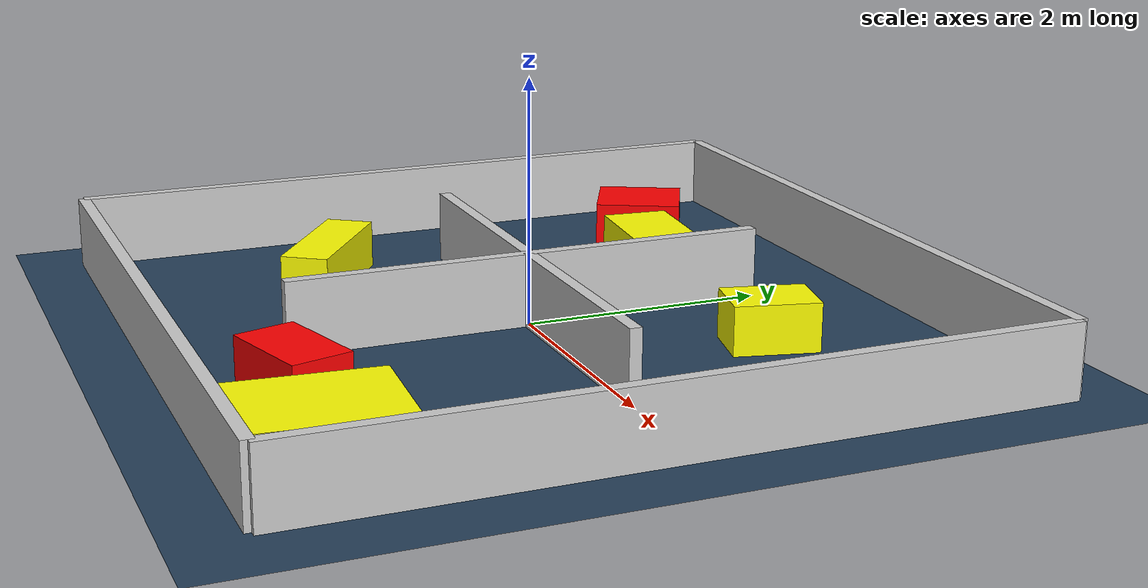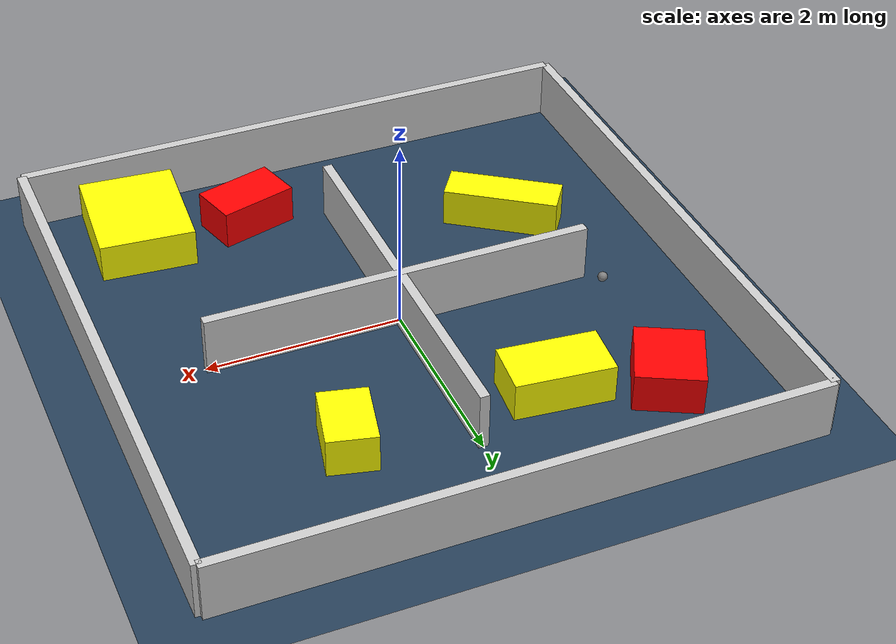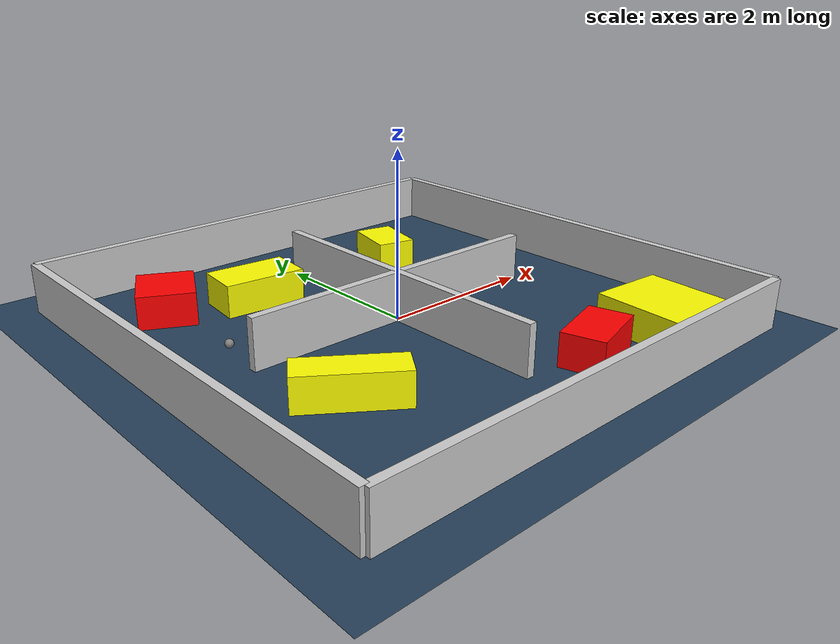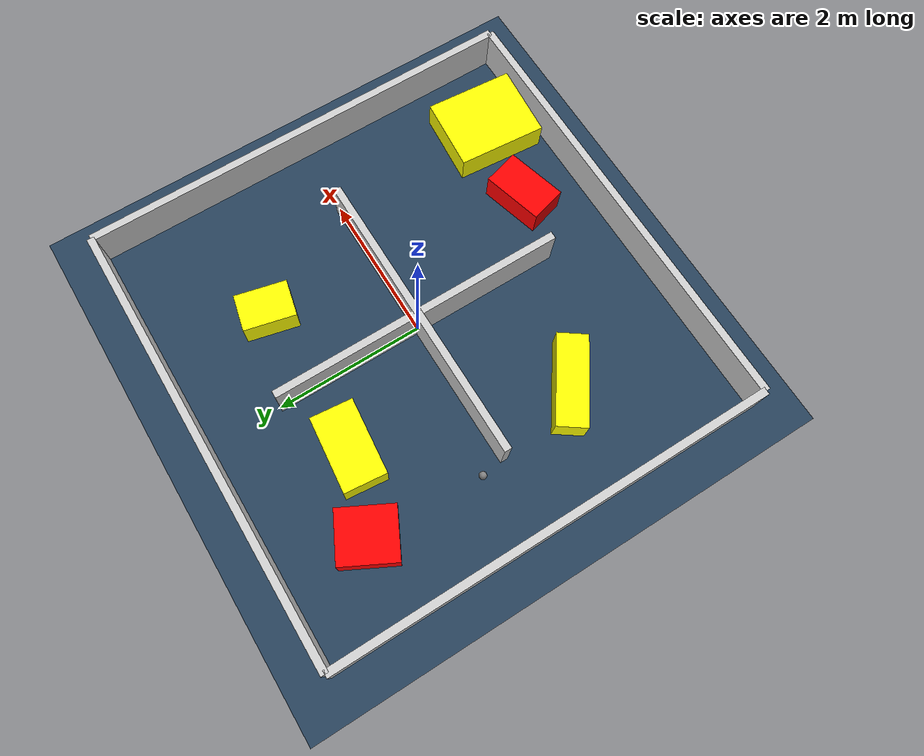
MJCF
<?xml version="1.0" ?>
<mujoco model="generated_environment">
  <option timestep="0.01" integrator="RK4" cone="elliptic"/>
  <default>
    <geom density="1"/>
  </default>
  <asset>
    <texture builtin="gradient" height="3072" rgb1="0.3 0.5 0.7" rgb2="0 0 0" type="skybox" width="512"/>
    <texture builtin="checker" height="300" mark="edge" markrgb="0.8 0.8 0.8" name="groundplane" rgb1="0.2 0.3 0.4" rgb2="0.1 0.2 0.3" type="2d" width="300"/>
    <material name="groundplane" reflectance="0.2" texrepeat="5 5" texture="groundplane" texuniform="true"/>
    <material name="robot" rgba="0.0 1.0 0.0 1"/>
  </asset>
  <worldbody>
    <light dir="0 0 -1" directional="true" pos="0 0 1.5"/>
    <geom condim="4" friction="1.0 0.005 0.001" material="groundplane" name="floor" size="0 0 0.05" type="plane"/>
    <body name="walls">
      <geom name="wall_1" condim="4" pos="-3.0 0.0 0.3" rgba="0.800000011920929 0.800000011920929 0.800000011920929 1.0" size="0.05 3.0 0.3" type="box"/>
      <geom name="wall_2" condim="4" pos="3.0 0.0 0.3" rgba="0.800000011920929 0.800000011920929 0.800000011920929 1.0" size="0.05 3.0 0.3" type="box"/>
      <geom name="wall_3" condim="4" pos="0.0 -3.0 0.3" rgba="0.800000011920929 0.800000011920929 0.800000011920929 1.0" size="3.0 0.05 0.3" type="box"/>
      <geom name="wall_4" condim="4" pos="0.0 3.0 0.3" rgba="0.800000011920929 0.800000011920929 0.800000011920929 1.0" size="3.0 0.05 0.3" type="box"/>
      <geom name="wall_5" condim="4" pos="1.0 0.0 0.3" rgba="0.800000011920929 0.800000011920929 0.800000011920929 1.0" size="1.0 0.05 0.3" type="box"/>
      <geom name="wall_6" condim="4" pos="-1.0 0.0 0.3" rgba="0.800000011920929 0.800000011920929 0.800000011920929 1.0" size="1.0 0.05 0.3" type="box"/>
      <geom name="wall_7" condim="4" pos="0.0 -1.0 0.3" rgba="0.800000011920929 0.800000011920929 0.800000011920929 1.0" size="0.05 1.0 0.3" type="box"/>
      <geom name="wall_8" condim="4" pos="0.0 1.0 0.3" rgba="0.800000011920929 0.800000011920929 0.800000011920929 1.0" size="0.05 1.0 0.3" type="box"/>
    </body>
    <body name="robot">
      <joint name="joint_x" type="slide" pos="0 0 0" axis="1 0 0"/>
      <joint name="joint_y" type="slide" pos="0 0 0" axis="0 1 0"/>
      <geom name="robot" type="sphere" pos="-2.0431181747154117 0.3476716068307919 0.2" size="0.05" mass="5." friction="1.0 0.005 0.0001" condim="4"/>
      <site name="sensor_ball"/>
    </body>
    <body name="obstacle_1_movable">
      <geom name="obstacle_1_movable" condim="4" pos="-0.936658519298283 1.5413827351343885 0.2" euler="0 0 84.36405238783439" friction="1.0 0.005 0.001" rgba="1 1 0 1" size="0.2834800347171126 0.5016626358516356 0.2" type="box" mass="0.1"/>
      <joint type="free"/>
    </body>
    <body name="obstacle_2_movable">
      <geom name="obstacle_2_movable" condim="4" pos="1.9959859359924401 -2.2926786358453812 0.2" euler="0 0 85.4442311443059" friction="1.0 0.005 0.001" rgba="1 1 0 1" size="0.5958661441438979 0.48920409145373905 0.2" type="box" mass="0.1"/>
      <joint type="free"/>
    </body>
    <body name="obstacle_3_static">
      <geom name="obstacle_3_static" condim="4" pos="-1.9468985451260612 1.8773585518501639 0.2" euler="0 0 152.87971855520513" friction="1.0 0.005 0.001" rgba="1 0 0 1" size="0.3351116364572796 0.3728650488614373 0.2" type="box"/>
    </body>
    <body name="obstacle_4_static">
      <geom name="obstacle_4_static" condim="4" pos="0.8532934966331069 -2.1600887315693456 0.2" euler="0 0 285.71417164992357" friction="1.0 0.005 0.001" rgba="1 0 0 1" size="0.25014518313826406 0.4138427319351996 0.2" type="box"/>
    </body>
    <body name="obstacle_5_movable">
      <geom name="obstacle_5_movable" condim="4" pos="-1.6541791184628722 -1.1827698055760405 0.2" euler="0 0 54.89579953346203" friction="1.0 0.005 0.001" rgba="1 1 0 1" size="0.20155893029643443 0.5942803299018397 0.2" type="box" mass="0.1"/>
      <joint type="free"/>
    </body>
    <body name="obstacle_6_movable">
      <geom name="obstacle_6_movable" condim="4" pos="1.1421063418738941 1.5409726090444154 0.2" euler="0 0 256.8670869232301" friction="1.0 0.005 0.001" rgba="1 1 0 1" size="0.34638157304415323 0.24594388677659573 0.2" type="box" mass="0.1"/>
      <joint type="free"/>
    </body>
  </worldbody>
  <actuator>
    <motor name="actuator_x" joint="joint_x" gear="1" ctrlrange="-1 1"/>
    <motor name="actuator_y" joint="joint_y" gear="1" ctrlrange="-1 1"/>
  </actuator>
</mujoco>
